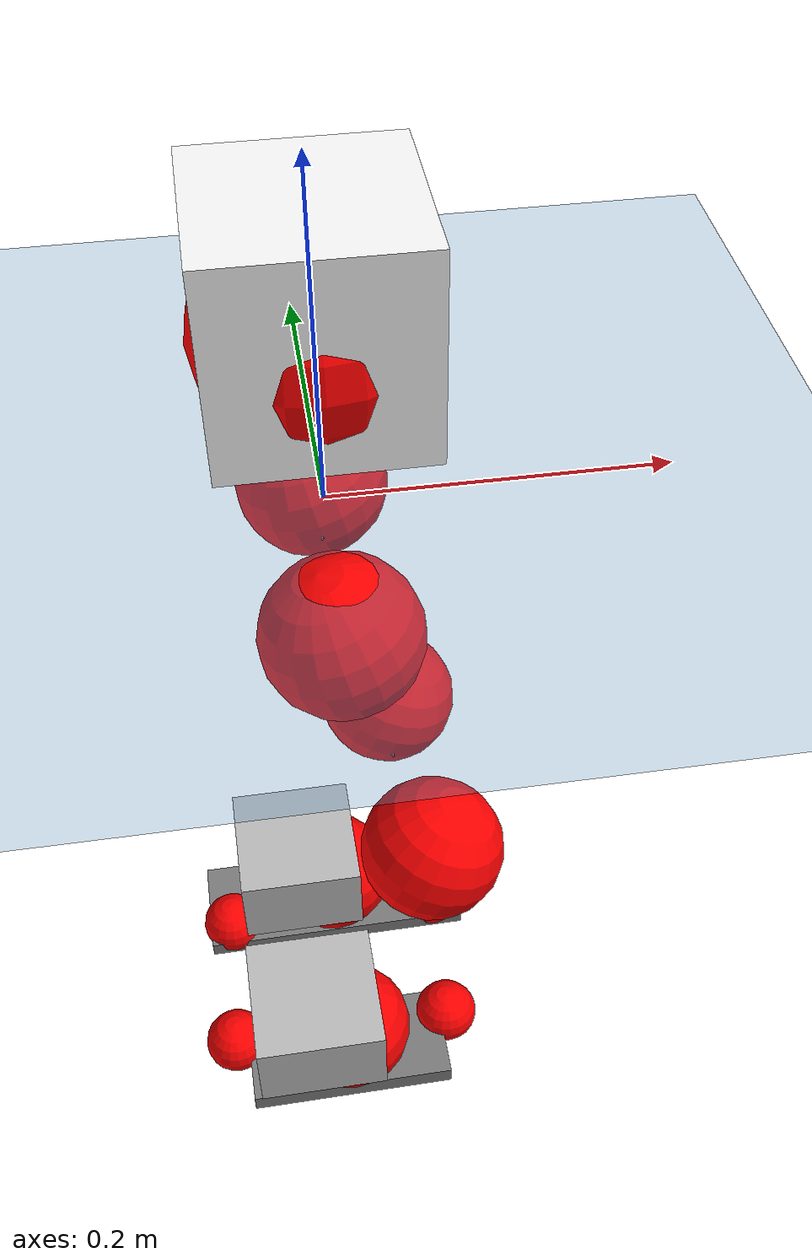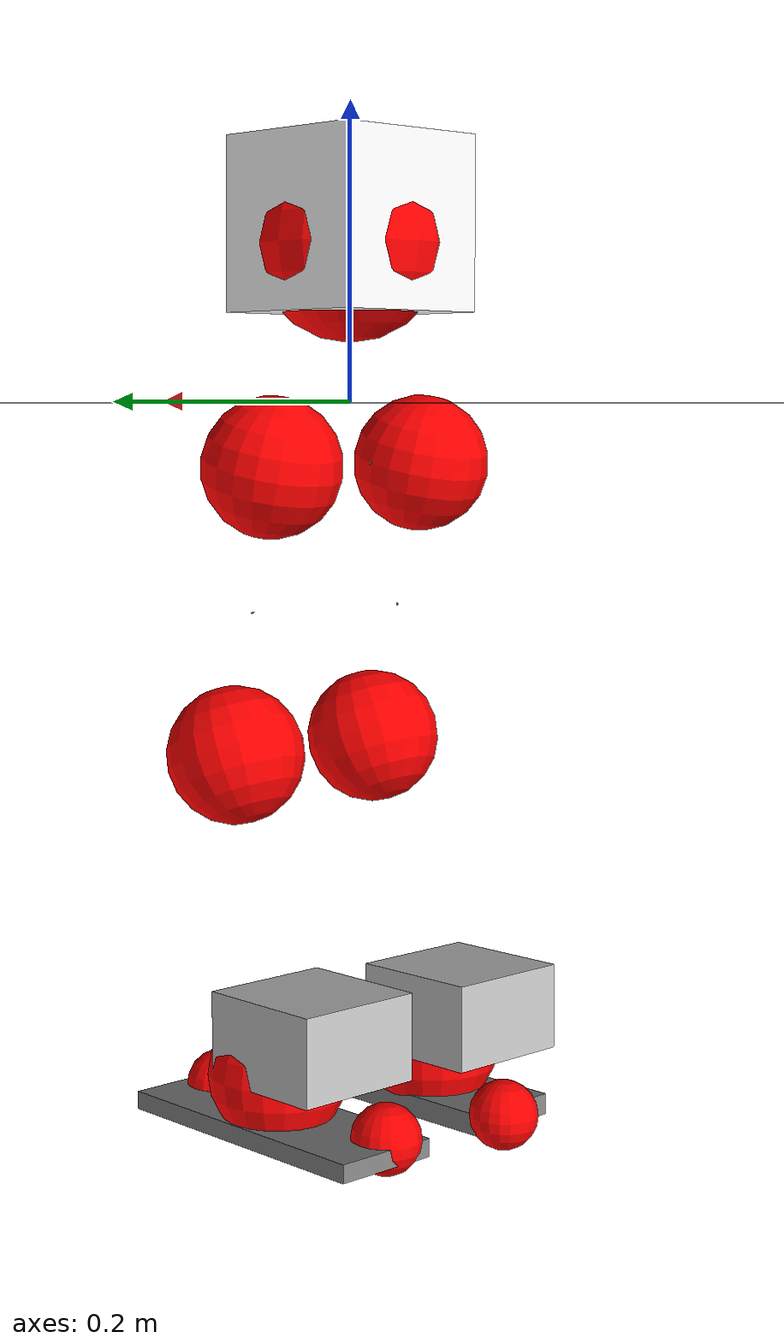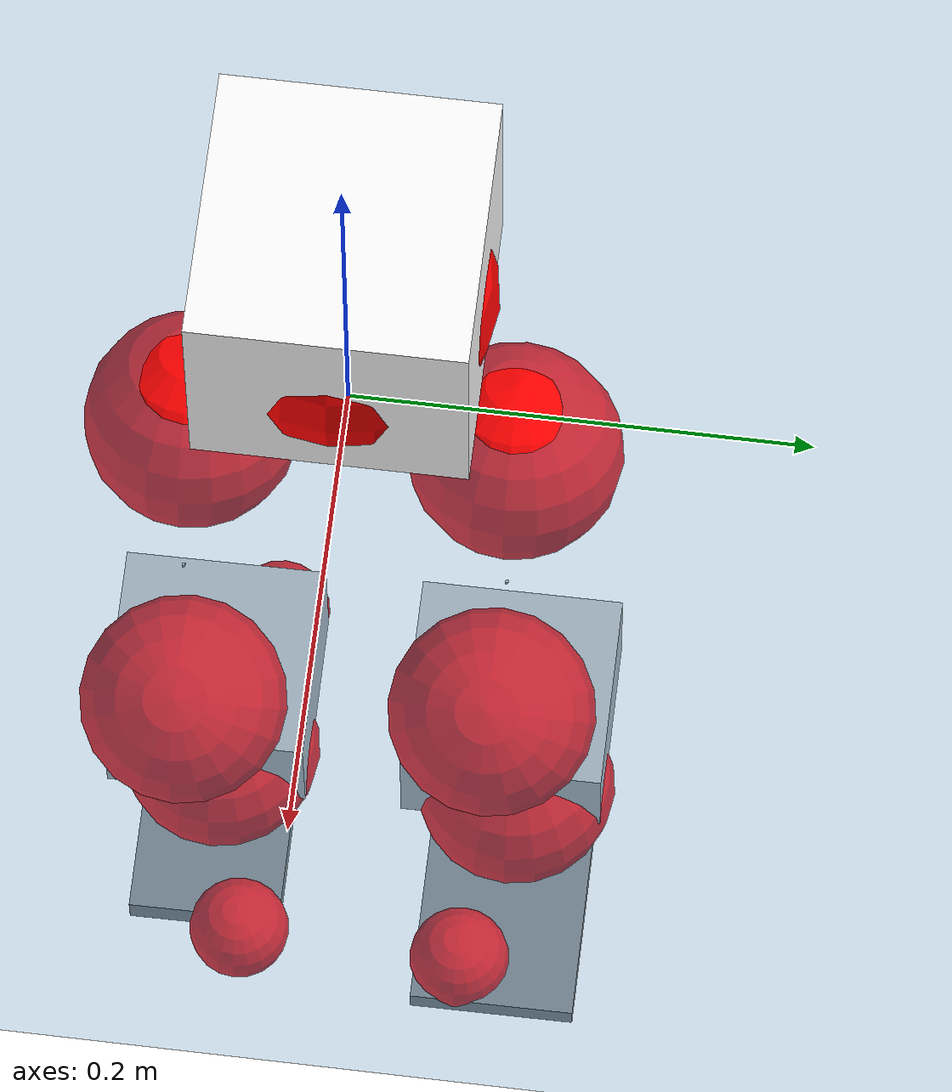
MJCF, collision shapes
<mujoco model="pi_12dof_release_v1">
  <compiler angle="radian" assetdir="assets" balanceinertia="true" inertiafromgeom="false"/>

  <option timestep="0.005" density="1.2" viscosity="2e-05"/>

  <size nkey="1"/>

  <visual>
    <quality shadowsize="8192"/>
    <map shadowclip="0.5"/>
  </visual>

  <default>
    <default class="/">
      <joint armature="0.01" damping="0.01" frictionloss="0.01"/>
      <geom contype="0" conaffinity="0" group="1" solref="-1000 -80"/>
      <site size="0.01 0.005 0.005" group="5"/>
      <general forcelimited="true" biastype="affine" gainprm="20" biasprm="0 -20 -0.5"/>
      <default class="foot">
        <geom size="0.0845 0.036 0.005" type="box" condim="6" group="4" priority="1" friction="0.9 0.2 0.2" solimp="0.015 1 0.005"/>
      </default>
      <default class="reward_collision_sphere">
        <geom group="5" rgba="1 0 0 1"/>
      </default>
    </default>
  </default>

  <asset>
    <texture type="skybox" colorspace="auto" name="//unnamed_texture_0" builtin="gradient" rgb1="0.95 0.95 0.95" rgb2="0.95 0.95 0.95" width="100" height="600"/>
    <texture type="2d" colorspace="auto" name="texplane" builtin="checker" rgb1="0.345 0.575 0.748" rgb2="0.345 0.575 0.748" markrgb="1 1 1" width="512" height="512"/>
    <material name="MatPlane" class="/" texture="texplane" texuniform="true" texrepeat="2 2" specular="0.9"/>
    <mesh name="baselink_1" class="/" file="baselink_1.STL"/>
    <mesh name="r_hip_pitch_link" class="/" file="r_hip_pitch_link.STL"/>
    <mesh name="r_hip_roll_link" class="/" file="r_hip_roll_link.STL"/>
    <mesh name="r_thigh_link" class="/" file="r_thigh_link.STL"/>
    <mesh name="r_calf_link" class="/" file="r_calf_link.STL"/>
    <mesh name="r_ankle_pitch_link" class="/" file="r_ankle_pitch_link.STL"/>
    <mesh name="r_ankle_roll_link" class="/" file="r_ankle_roll_link.STL"/>
    <mesh name="l_hip_pitch_link" class="/" file="l_hip_pitch_link.STL"/>
    <mesh name="l_hip_roll_link" class="/" file="l_hip_roll_link.STL"/>
    <mesh name="l_thigh_link" class="/" file="l_thigh_link.STL"/>
    <mesh name="l_calf_link" class="/" file="l_calf_link.STL"/>
    <mesh name="l_ankle_pitch_link" class="/" file="l_ankle_pitch_link.STL"/>
    <mesh name="l_ankle_roll_link" class="/" file="l_ankle_roll_link.STL"/>
  </asset>

  <worldbody>
    <geom name="floor" class="/" size="100 100 0.125" type="plane" group="0" material="MatPlane"/>
    <light name="toplight_shadow" class="/" pos="0 0 5" dir="0.0990148 0.0990148 -0.990148" type="directional" ambient="0.04 0.04 0.04" diffuse="0.55 0.55 0.55" specular="0.12 0.12 0.12"/>
    <light name="toplight_fill" class="/" pos="0 0 5" dir="0.0990148 0.0990148 -0.990148" type="directional" castshadow="false" ambient="0.04 0.04 0.04" diffuse="0.3 0.3 0.3" specular="0.08 0.08 0.08"/>
    <body name="trunk" pos="-0.000321111 0.000314206 0.00354374" quat="1 0.000193452 -0.000375293 0.000617558">
      <inertial pos="0.00501958 -0.007133 0.0533543" quat="0.694659 0.00921154 0.00821853 0.719234" mass="3.62843" diaginertia="0.0240641 0.00485814 0.0252687"/>
      <joint name="//unnamed_joint_0" type="free"/>
      <geom name="//unnamed_geom_1" class="/" type="mesh" density="0" rgba="1 1 1 1" mesh="baselink_1"/>
      <geom name="//unnamed_geom_2" class="/" size="0.0587783 0.0587783 0.0587783" pos="0 0 0.114957" type="box" rgba="1 1 1 1"/>
      <geom name="//unnamed_geom_3" class="reward_collision_sphere" size="0.0646561" pos="0 0 0.100587"/>
      <site name="imu" class="/" pos="0.00213971 0.00847965 0.000680415" size="0.0117557"/>
      <camera name="track" class="/" pos="0 -1.75413 0" quat="0.707107 0.707107 0 0" mode="trackcom"/>
      <camera name="ego_camera" class="/" pos="0.0909503 0 0.258653" quat="-0.5 -0.5 0.5 0.5"/>
      <body name="r_hip_pitch_link" pos="-0.00123474 -0.0176851 -0.0453162" quat="0.992223 -0.0006211 -0.124471 4.744e-05">
        <inertial pos="0.00666739 -0.0517721 0.000958827" quat="-0.019455 0.706297 -0.0179191 0.707421" mass="0.5846" diaginertia="0.000282003 5.1219e-05 0.000490678"/>
        <joint name="r_hip_pitch_joint" class="/" pos="0 0 0" axis="-0.022791 -0.999327 0.0287518" range="-1.78819 1.31205" armature="0.0128284" damping="0.0194515" frictionloss="0.0141517"/>
        <geom name="//unnamed_geom_4" class="/" type="mesh" density="0" rgba="0.75294 0.75294 0.75294 1" mesh="r_hip_pitch_link"/>
        <geom name="//unnamed_geom_5" class="/" size="0.000587783 0.000587783 0.000587783" type="box" rgba="0.75294 0.75294 0.75294 1"/>
        <body name="r_hip_roll_link" pos="0.00148325 -0.0506645 -0.000829362" quat="1 2.27254e-05 -6.20239e-05 0.000124404">
          <inertial pos="-0.00147531 -0.00215359 -0.0856623" quat="0.700529 -0.0828787 -0.0854707 0.703623" mass="0.690464" diaginertia="0.000861312 0.000146621 0.000929875"/>
          <joint name="r_hip_roll_joint" class="/" pos="0 0 0" axis="-0.999772 0.0201777 -0.00704581" stiffness="0.00524733" range="-0.112092 0.45448" armature="0.0105364" damping="0.0571749" frictionloss="0.010638"/>
          <geom name="//unnamed_geom_6" class="/" type="mesh" density="0" rgba="0.75294 0.75294 0.75294 1" mesh="r_hip_roll_link"/>
          <geom name="//unnamed_geom_7" class="/" size="0.000587783 0.000587783 0.000587783" type="box" rgba="0.75294 0.75294 0.75294 1"/>
          <geom name="//unnamed_geom_8" class="reward_collision_sphere" size="0.0470226"/>
          <body name="r_thigh_link" pos="0.000377845 -0.00324747 -0.103917" quat="0.999995 0.00314211 0.000622891 0.000802903">
            <inertial pos="-0.000776735 0.000688634 -0.0694328" quat="0.738108 0.674682 -0.000144505 -0.00125653" mass="0.191605" diaginertia="0.0003258 5.10189e-05 0.000381858"/>
            <joint name="r_thigh_joint" class="/" pos="0 0 0" axis="0.000272213 0.00146952 -0.999999" range="-0.313033 0.665072" armature="0.00877818" damping="0.00497215" frictionloss="0.0122731"/>
            <geom name="//unnamed_geom_9" class="/" type="mesh" density="0" rgba="0.75294 0.75294 0.75294 1" mesh="r_thigh_link"/>
            <geom name="//unnamed_geom_10" class="/" size="0.000587783 0.000587783 0.000587783" type="box" rgba="0.75294 0.75294 0.75294 1"/>
            <body name="r_calf_link" pos="-7.52629e-05 -0.000355048 -0.0993891" quat="0.946978 0.000535756 0.321297 0.00116983">
              <inertial pos="-0.00218047 0.00123656 -0.102283" quat="0.999985 -0.00228854 6.56496e-06 0.00490823" mass="1.43888" diaginertia="0.00969401 0.00198363 0.00106135"/>
              <joint name="r_calf_joint" class="/" pos="0 0 0" axis="-0.0295779 -0.999149 -0.0287463" range="-1.64064 0.635417" armature="0.0116374" damping="0.0153582" frictionloss="0.0111509"/>
              <geom name="//unnamed_geom_11" class="/" type="mesh" density="0" rgba="0.75294 0.75294 0.75294 1" mesh="r_calf_link"/>
              <geom name="//unnamed_geom_12" class="/" size="0.000587783 0.000587783 0.000587783" type="box" rgba="0.75294 0.75294 0.75294 1"/>
              <geom name="//unnamed_geom_13" class="reward_collision_sphere" size="0.0470226"/>
              <body name="r_ankle_pitch_link" pos="-0.0081056 -0.00183828 -0.200697" quat="0.980121 0.000298132 -0.198398 4.25667e-05">
                <inertial pos="0.00629091 0.0010164 -0.000170955" quat="0.00225779 0.707116 -0.00215574 0.70709" mass="0.259821" diaginertia="0.000783405 0.000103777 0.000672821"/>
                <joint name="r_ankle_pitch_joint" class="/" pos="0 0 0" axis="0.00169213 -0.999989 0.00433669" stiffness="0.00474646" range="-1.24262 0.490037" armature="0.0111733" damping="0" frictionloss="0.00860311"/>
                <geom name="//unnamed_geom_14" class="/" type="mesh" density="0" rgba="0.75294 0.75294 0.75294 1" mesh="r_ankle_pitch_link"/>
                <geom name="//unnamed_geom_15" class="/" size="0.045847 0.0470226 0.0293891" type="box" rgba="0.75294 0.75294 0.75294 1"/>
                <body name="r_ankle_roll_link" pos="0.0841543 0.00425051 -0.00189108" quat="1 -0.000342774 -0.000566238 0.000578889">
                  <inertial pos="-0.0287677 -0.00139977 -0.0285749" quat="0.561178 0.427961 0.431525 0.561885" mass="0.934486" diaginertia="0.00288431 0.000525401 0.00170459"/>
                  <joint name="r_ankle_roll_joint" class="/" pos="0 0 0" axis="-0.999972 0.0053772 -0.00524635" stiffness="0.000359815" range="-0.107389 0.112552" armature="0.0118445" damping="0.00671495" frictionloss="0.00693744"/>
                  <geom name="//unnamed_geom_16" class="/" type="mesh" density="0" rgba="0.75294 0.75294 0.75294 1" mesh="r_ankle_roll_link"/>
                  <geom name="//unnamed_geom_17" class="/" type="mesh" rgba="0.75294 0.75294 0.75294 1" mesh="r_ankle_roll_link"/>
                  <geom name="right_foot" class="foot" size="0.0748921 0.0355808 0.0071884" pos="-0.0618462 0 -0.0632263"/>
                  <geom name="//unnamed_geom_19" class="reward_collision_sphere" size="0.0470226" pos="-0.0606336 0 -0.0287392"/>
                  <geom name="//unnamed_geom_20" class="reward_collision_sphere" size="0.0235113" pos="0.0181901 0.0175413 -0.0574785"/>
                  <geom name="//unnamed_geom_21" class="reward_collision_sphere" size="0.0235113" pos="-0.145521 0.0175413 -0.0574785"/>
                  <site name="right_foot" class="foot" pos="-0.0618462 0 -0.0632263" size="0.0117557"/>
                </body>
              </body>
            </body>
          </body>
        </body>
      </body>
      <body name="l_hip_pitch_link" pos="-0.000930072 0.016344 -0.0470707" quat="0.992094 -0.000527405 -0.125493 -0.000412508">
        <inertial pos="0.00211309 0.0530254 0.00171954" quat="-0.0560027 0.717356 -0.00883373 0.694396" mass="0.704865" diaginertia="0.000339706 5.2763e-05 0.000623581"/>
        <joint name="l_hip_pitch_joint" class="/" pos="0 0 0" axis="-0.00153648 0.999899 0.014106" range="-1.33898 1.88121" armature="0.0103013" damping="0.00105675" frictionloss="0.0147906"/>
        <geom name="//unnamed_geom_22" class="/" type="mesh" density="0" rgba="0.75294 0.75294 0.75294 1" mesh="l_hip_pitch_link"/>
        <geom name="//unnamed_geom_23" class="/" size="0.000587783 0.000587783 0.000587783" type="box" rgba="0.75294 0.75294 0.75294 1"/>
        <body name="l_hip_roll_link" pos="-0.000470778 0.0553056 0.00100765" quat="1 -0.000339173 2.89069e-05 -0.00051237">
          <inertial pos="-0.00311947 0.00347655 -0.0868888" quat="0.699295 -0.0752559 -0.0779808 0.70657" mass="0.612257" diaginertia="0.000780378 0.00013472 0.000710778"/>
          <joint name="l_hip_roll_joint" class="/" pos="0 0 0" axis="-0.999995 0.0029736 -0.00137351" range="-0.669844 0.253911" armature="0.0123073" damping="0" frictionloss="0.0130184"/>
          <geom name="//unnamed_geom_24" class="/" type="mesh" density="0" rgba="0.75294 0.75294 0.75294 1" mesh="l_hip_roll_link"/>
          <geom name="//unnamed_geom_25" class="/" size="0.000587783 0.000587783 0.000587783" type="box" rgba="0.75294 0.75294 0.75294 1"/>
          <geom name="//unnamed_geom_26" class="reward_collision_sphere" size="0.0470226"/>
          <body name="l_thigh_link" pos="-0.00412347 -0.000935874 -0.0987116" quat="0.999997 0.00220014 -0.000992306 -0.000650476">
            <inertial pos="-0.0044207 -0.00177911 -0.0649868" quat="0.675349 0.737498 1.55905e-05 -3.54e-07" mass="0.174327" diaginertia="0.000287633 4.00296e-05 0.000278878"/>
            <joint name="l_thigh_joint" class="/" pos="0 0 0" axis="0.0014719 -0.00600919 -0.999981" stiffness="0.00262655" range="-0.578073 0.404669" armature="0.0121306" damping="0" frictionloss="0.0138574"/>
            <geom name="//unnamed_geom_27" class="/" type="mesh" density="0" rgba="0.75294 0.75294 0.75294 1" mesh="l_thigh_link"/>
            <geom name="//unnamed_geom_28" class="/" size="0.000587783 0.000587783 0.000587783" type="box" rgba="0.75294 0.75294 0.75294 1"/>
            <body name="l_calf_link" pos="-0.00317961 -0.00418 -0.100648" quat="0.947085 -0.00120536 0.320974 0.00181739">
              <inertial pos="0.00209484 0.0020925 -0.099467" quat="0.999185 -0.00860848 0.0390173 -0.00570364" mass="1.34919" diaginertia="0.00926655 0.00190758 0.00111687"/>
              <joint name="l_calf_joint" class="/" pos="0 0 0" axis="0.0112385 0.999911 -0.00724358" range="-0.619773 1.67219" armature="0.0111239" damping="0.0148718" frictionloss="0.013332"/>
              <geom name="//unnamed_geom_29" class="/" type="mesh" density="0" rgba="0.75294 0.75294 0.75294 1" mesh="l_calf_link"/>
              <geom name="//unnamed_geom_30" class="/" size="0.000587783 0.000587783 0.000587783" type="box" rgba="0.75294 0.75294 0.75294 1"/>
              <geom name="//unnamed_geom_31" class="reward_collision_sphere" size="0.0470226"/>
              <body name="l_ankle_pitch_link" pos="-0.00111317 0.000367874 -0.193471" quat="0.980124 0.000989089 -0.198385 0.000536487">
                <inertial pos="0.0061864 -0.00945385 -0.00182475" quat="0.0124294 0.715527 0.0143152 0.698328" mass="0.318665" diaginertia="0.00087296 0.00012564 0.000791892"/>
                <joint name="l_ankle_pitch_joint" class="/" pos="0 0 0" axis="0.0342815 0.999406 -0.00344315" range="-0.52631 1.3177" armature="0.0123843" damping="0.033225" frictionloss="0.0108586"/>
                <geom name="//unnamed_geom_32" class="/" type="mesh" density="0" rgba="0.75294 0.75294 0.75294 1" mesh="l_ankle_pitch_link"/>
                <geom name="//unnamed_geom_33" class="/" size="0.045847 0.0470226 0.0293891" type="box" rgba="0.75294 0.75294 0.75294 1"/>
                <body name="l_ankle_roll_link" pos="0.0880006 0.00503713 -0.000226768" quat="0.999998 0.00117971 -0.00154156 0.000103449">
                  <inertial pos="-0.0298354 -0.00214461 -0.020388" quat="0.581841 0.404552 0.444709 0.547752" mass="0.923374" diaginertia="0.00308242 0.000537665 0.00156892"/>
                  <joint name="l_ankle_roll_joint" class="/" pos="0 0 0" axis="-0.999063 0.0365209 -0.0232222" stiffness="0.00191463" range="-0.14285 0.332572" armature="0.0114484" damping="0.0205327" frictionloss="0.0167528"/>
                  <geom name="//unnamed_geom_34" class="/" type="mesh" density="0" rgba="0.75294 0.75294 0.75294 1" mesh="l_ankle_roll_link"/>
                  <geom name="//unnamed_geom_35" class="/" type="mesh" rgba="0.75294 0.75294 0.75294 1" mesh="l_ankle_roll_link"/>
                  <geom name="left_foot" class="foot" size="0.102149 0.0382853 0.00609165" pos="-0.0618462 0 -0.0632263"/>
                  <geom name="//unnamed_geom_37" class="reward_collision_sphere" size="0.0470226" pos="-0.0606336 0 -0.0287392"/>
                  <geom name="//unnamed_geom_38" class="reward_collision_sphere" size="0.0235113" pos="0.0181901 -0.0175413 -0.0574785"/>
                  <geom name="//unnamed_geom_39" class="reward_collision_sphere" size="0.0235113" pos="-0.145521 -0.0175413 -0.0574785"/>
                  <site name="left_foot" class="foot" pos="-0.0618462 0 -0.0632263" size="0.0117557"/>
                </body>
              </body>
            </body>
          </body>
        </body>
      </body>
    </body>
  </worldbody>

  <contact>
    <pair class="/" geom1="floor" geom2="right_foot" name="//unnamed_contact_1"/>
    <pair class="/" geom1="floor" geom2="left_foot" name="//unnamed_contact_0"/>
  </contact>

  <actuator>
    <general name="r_hip_pitch_joint" class="/" joint="r_hip_pitch_joint" forcerange="-28.0399 28.0399" gainprm="23.6676" biasprm="0 -23.6676 -0.615847"/>
    <general name="r_hip_roll_joint" class="/" joint="r_hip_roll_joint" forcerange="-24.1093 24.1093" gainprm="23.6676" biasprm="0 -23.6676 -0.615847"/>
    <general name="r_thigh_joint" class="/" joint="r_thigh_joint" forcerange="-26.9514 26.9514" gainprm="23.6676" biasprm="0 -23.6676 -0.615847"/>
    <general name="r_calf_joint" class="/" joint="r_calf_joint" forcerange="-25.1377 25.1377" gainprm="23.6676" biasprm="0 -23.6676 -0.615847"/>
    <general name="r_ankle_pitch_joint" class="/" joint="r_ankle_pitch_joint" forcerange="-22.173 22.173" gainprm="23.6676" biasprm="0 -23.6676 -0.615847"/>
    <general name="r_ankle_roll_joint" class="/" joint="r_ankle_roll_joint" forcerange="-18.7846 18.7846" gainprm="23.6676" biasprm="0 -23.6676 -0.615847"/>
    <general name="l_hip_pitch_joint" class="/" joint="l_hip_pitch_joint" forcerange="-26.3432 26.3432" gainprm="23.6676" biasprm="0 -23.6676 -0.615847"/>
    <general name="l_hip_roll_joint" class="/" joint="l_hip_roll_joint" forcerange="-32.4544 32.4544" gainprm="23.6676" biasprm="0 -23.6676 -0.615847"/>
    <general name="l_thigh_joint" class="/" joint="l_thigh_joint" forcerange="-25.8956 25.8956" gainprm="23.6676" biasprm="0 -23.6676 -0.615847"/>
    <general name="l_calf_joint" class="/" joint="l_calf_joint" forcerange="-23.874 23.874" gainprm="23.6676" biasprm="0 -23.6676 -0.615847"/>
    <general name="l_ankle_pitch_joint" class="/" joint="l_ankle_pitch_joint" forcerange="-25.0476 25.0476" gainprm="23.6676" biasprm="0 -23.6676 -0.615847"/>
    <general name="l_ankle_roll_joint" class="/" joint="l_ankle_roll_joint" forcerange="-25.4471 25.4471" gainprm="23.6676" biasprm="0 -23.6676 -0.615847"/>
  </actuator>

  <sensor>
    <gyro site="imu" name="imu_angular_velocity"/>
    <velocimeter site="imu" name="imu_linear_velocity"/>
    <framelinvel objtype="site" objname="left_foot" name="left_foot_global_linear_velocity"/>
    <framelinvel objtype="site" objname="right_foot" name="right_foot_global_linear_velocity"/>
  </sensor>

  <keyframe>
    <key name="home" qpos="0 0 0.291 1 0 0 0 0.4 0 0 -0.8 0.4 0 -0.4 0 0 0.8 -0.4 0"/>
  </keyframe>
</mujoco>
